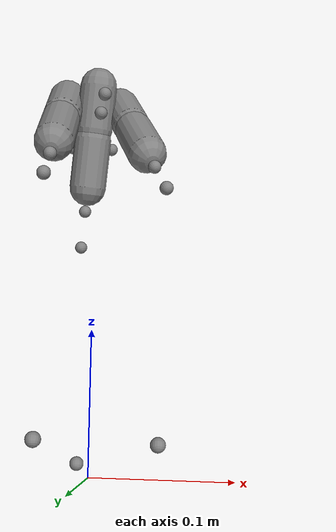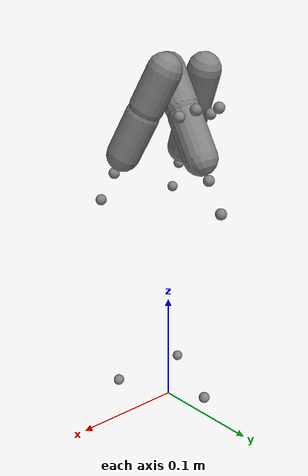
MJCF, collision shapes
<mujoco model="shadow_dexee">
  <compiler angle="radian" meshdir="./mjcf/assets/shadow_dexee"/>

  <option apirate="200" iterations="20" />
  <size njmax="500" nconmax="100" nstack="600000" nuser_jnt="1" nuser_site="1" nuser_tendon="1" nuser_actuator="16" nuser_sensor="1" />
  <visual>
    <map force="0.1" fogend="5" />
  </visual>
  <default>
    <!--main-->
    <default class="robot0:D_Vizual">
      <geom contype="0" conaffinity="0" group="1" material="robot0:MatViz" />
    </default>

    <!--joints-->
    <default class="robot0:asset_class">
      <joint limited="true" margin="0.01" armature="0.001" damping="0.1" frictionloss="0.001" />
      <geom friction="1 0.005 0.001" margin="0.0005" />
      <site rgba="0.4 0.9 0.4 1" />
      <general ctrllimited="true" forcelimited="true" />
    </default>

    <!--sites-->
    <default class="finger_collision_hard">
      <geom condim="4" friction="1 0.001 2e-05" solref="-7000 -167"/>
    </default>
    <default class="finger_collision_soft">
      <geom condim="6" friction="1 0.005 0.0001" solref="-2500 -100"/>
    </default>
  </default>

  <asset>
    <material name="robot0:MatViz" specular="0.75" shininess="0.1" reflectance="0.5" rgba="0.93 0.93 0.93 1" />

    <mesh name="r3_config1_base" file="r3_config1_base.stl" scale= "1 1 1"/>
    <mesh name="r3_config1_base_col" file="r3_config1_base_col.stl" scale="1 1 1"/>
    <mesh name="r3_config1_base_puck" file="r3_config1_base_puck.stl" scale="1 1 1"/>
    <mesh name="r3_config1_base_puck_col" file="r3_config1_base_puck_col.stl" scale="1 1 1"/>
    <mesh name="r3_finger_base" file="r3_finger_base.stl" scale="1 1 1"/>
    <mesh name="r3_finger_base_tb" file="r3_finger_base_tb.stl" scale="1 1 1"/>
    <mesh name="r3_finger_cover" file="r3_finger_cover.stl" scale="1 1 1"/>
    <mesh name="r3_finger_pulley_block" file="r3_finger_pulley_block.stl" scale="1 1 1"/>
    <mesh name="r3_finger_lid_white" file="r3_finger_lid_white.stl" scale="1 1 1"/>
    <mesh name="r3_finger_lid_logo" file="r3_finger_lid_logo.stl" scale="1 1 1"/>
    <mesh name="r3_finger_cover_small_left" file="r3_finger_cover_small_left.stl" scale="1 1 1"/>
    <mesh name="r3_finger_cover_small_right" file="r3_finger_cover_small_right.stl" scale="1 1 1"/>
    <mesh name="r3_finger_base_col" file="r3_finger_base_col.stl" scale="1 1 1"/>
    <mesh name="r3_finger_knuckle" file="r3_finger_knuckle.stl" refquat="1 -1 0 0" scale="1 1 1"/>
    <mesh name="r3_finger_knuckle_col" file="r3_finger_knuckle_col.stl" refquat="1 -1 0 0" scale="1 1 1"/>
    <mesh name="r3_finger_proximal" file="r3_finger_proximal.stl" refquat="1 -1 0 0" scale="1 1 1"/>
    <mesh name="r3_finger_proximal_lid" file="r3_finger_proximal_lid.stl" refquat="1 -1 0 0" scale="1 1 1"/>
    <mesh name="r3_finger_proximal_magtac" file="r3_finger_proximal_magtac.stl" refquat="1 -1 0 0" scale="1 1 1"/>
    <mesh name="r3_finger_proximal_col" file="r3_finger_proximal_col.stl" refquat="1 -1 0 0" scale="1 1 1"/>
    <mesh name="r3_finger_middle" file="r3_finger_middle.stl" refquat="1 -1 0 0" scale="1 1 1"/>
    <mesh name="r3_finger_middle_magtac" file="r3_finger_middle_magtac.stl" refquat="1 -1 0 0" scale="1 1 1"/>
    <mesh name="r3_finger_middle_col" file="r3_finger_middle_col.stl" refquat="1 -1 0 0" scale="1 1 1"/>
    <mesh name="r3_finger_distal" file="r3_finger_distal.stl" refquat="0 0 0 1" scale="1 1 1"/>
    <mesh name="r3_finger_distal_sensor" file="r3_finger_distal_sensor.stl" refquat="0 -1 0 0" scale="1 1 1"/>
    <mesh name="r3_finger_distal_col" file="r3_finger_distal_col.stl" refquat="0 0 0 1" scale="1 1 1"/>
    <mesh name="r3_finger_distal_tip_col" file="r3_finger_distal_tip_col.stl" refquat="0 -1 0 0" scale="1 1 1"/>
  </asset>

  <worldbody>
    <body name="hand_base">
      <geom name="hand_base_geom" class="robot0:D_Vizual" type="mesh" mesh="r3_config1_base" mass="0.51"/>
      <geom name="hand_base_geom_col" class="robot0:D_Vizual" type="mesh" mass="0" mesh="r3_config1_base_col"/>
      <geom name="hand_base_puck_geom" class="robot0:D_Vizual" type="mesh" mass="0" mesh="r3_config1_base_puck"/>
      <geom name="hand_base_puck_geom_col" class="robot0:D_Vizual" type="mesh" mass="0" mesh="r3_config1_base_puck_col"/>
      <body name="F0_finger_base" pos="0 0.05 0.017" quat="1 0 0 0">
        <site name="F0_attachment_site"/>
        <geom name="F0_base_geom" class="robot0:D_Vizual" type="mesh" mass="0.89937782" mesh="r3_finger_base"/>
        <geom name="F0_base_tb_geom" class="robot0:D_Vizual" type="mesh" mass="0" mesh="r3_finger_base_tb"/>
        <geom name="F0_base_cover_geom" class="robot0:D_Vizual" type="mesh" mass="0" mesh="r3_finger_cover"/>
        <geom name="F0_base_pulley_block_geom" class="robot0:D_Vizual" type="mesh" mass="0" mesh="r3_finger_pulley_block"/>
        <geom name="F0_base_lid_white_geom" class="robot0:D_Vizual" type="mesh" mass="0" mesh="r3_finger_lid_white"/>
        <geom name="F0_base_lid_logo_geom" class="robot0:D_Vizual" type="mesh" mass="0" mesh="r3_finger_lid_logo"/>
        <geom name="F0_base_cover_small_left_geom" class="robot0:D_Vizual" type="mesh" mass="0" mesh="r3_finger_cover_small_left"/>
        <geom name="F0_base_cover_small_right_geom" class="robot0:D_Vizual" type="mesh" mass="0" mesh="r3_finger_cover_small_right"/>
        <body name="F0_finger_knuckle" pos="0 0.015 0.17902" quat="0.9659261431868233 0.2588178624211019 0 0">
          <site name="F0_j0_site"/>
          <joint name="F0_J0" axis="0 -1 0" range="-0.8727 0.8727" armature="8e-05" damping="0.009" frictionloss="0.009"/>
          <geom name="F0_knuckle_geom" class="robot0:D_Vizual" type="mesh" mass="0.13077995" mesh="r3_finger_knuckle"/>
          <body name="F0_finger_proximal" pos="0 0 0.03">
            <geom name="primitive_f_0_0" type="capsule" size="0.015 0.02" pos="0 0 0.04"/>
            <site name="F0_j1_site"/>
            <joint name="F0_J1" axis="1 0 0" range="-1.3963 0.7854" armature="8e-05" damping="0.009"
              frictionloss="0.009"/>
            <body name="F0_finger_middle" pos="0 0 0.05" >
              <geom name="primitive_f_0_1" type="capsule" size="0.015 0.0175" pos="0 0 0.035"/>
              <site name="F0_j2_site"/>
              <joint name="F0_J2" axis="1 0 0" range="0 1.3963" armature="8e-05" damping="0.009" frictionloss="0.009"/>
              <body name="F0_finger_distal" pos="0 0 0.035" quat="0 0 -1 1" >
                <geom name="primitive_f_0_2" type="capsule" size="0.012 0.015" pos="0 0 0" quat="0 0 1 1"/>
                <site name="F0_j3_site"/>
                <joint name="F0_J3" axis="-1 0 0" range="-0.5236 1.4835" armature="8e-05" damping="0.009"
                  frictionloss="0.009"/>
                <site name="F0_fingertip_site" pos="0 -0.00625 0.04"/>
                <site name="F0_distal_site" pos="0 0.007 0.03"/>
              </body>
            </body>
          </body>
        </body>
      </body>

      <body name="F1_finger_base" pos="0.039 -0.029 0.017" quat="-0.16212752892551119 0 0 0.98676981326168844">
        <site name="F1_attachment_site"/>
        <geom name="F1_base_geom" class="robot0:D_Vizual" type="mesh" mass="0.89937782" mesh="r3_finger_base"/>
        <geom name="F1_base_tb_geom" class="robot0:D_Vizual" type="mesh" mass="0" mesh="r3_finger_base_tb"/>
        <geom name="F1_base_cover_geom" class="robot0:D_Vizual" type="mesh" mass="0" mesh="r3_finger_cover"/>
        <geom name="F1_base_pulley_block_geom" class="robot0:D_Vizual" type="mesh" mass="0" mesh="r3_finger_pulley_block"/>
        <geom name="F1_base_lid_white_geom" class="robot0:D_Vizual" type="mesh" mass="0"
          mesh="r3_finger_lid_white"/>
        <geom name="F1_base_lid_logo_geom" class="robot0:D_Vizual" type="mesh" mass="0" mesh="r3_finger_lid_logo"/>
        <geom name="F1_base_cover_small_left_geom" class="robot0:D_Vizual" type="mesh" mass="0"
          mesh="r3_finger_cover_small_left"/>
        <geom name="F1_base_cover_small_right_geom" class="robot0:D_Vizual" type="mesh" mass="0"
          mesh="r3_finger_cover_small_right"/>
        <body name="F1_finger_knuckle" pos="0 0.015 0.17902" quat="0.9659261431868233 0.2588178624211019 0 0">
          <site name="F1_j0_site"/>
          <joint name="F1_J0" axis="0 -1 0" range="-0.8727 0.8727" armature="8e-05" damping="0.009" frictionloss="0.009"/>
          <geom name="F1_knuckle_geom" class="robot0:D_Vizual" type="mesh" mass="0.13077995"
            mesh="r3_finger_knuckle"/>
          <body name="F1_finger_proximal" pos="0 0 0.03" >
            <geom name="primitive_f_1_0" type="capsule" size="0.015 0.02" pos="0 0 0.04"/>
            <site name="F1_j1_site"/>
            <joint name="F1_J1" axis="1 0 0" range="-1.3963 0.7854" armature="8e-05" damping="0.009"
              frictionloss="0.009"/>
            <body name="F1_finger_middle" pos="0 0 0.05" >
              <geom name="primitive_f_1_1" type="capsule" size="0.015 0.0175" pos="0 0 0.035"/>
              <site name="F1_j2_site"/>
              <joint name="F1_J2" axis="1 0 0" range="0 1.3963" armature="8e-05" damping="0.009" frictionloss="0.009"/>
              <body name="F1_finger_distal" pos="0 0 0.035" quat="0 0 -1 1" >
                <geom name="primitive_f_1_2" type="capsule" size="0.012 0.015" pos="0 0 0" quat="0 0 1 1"/>
                <site name="F1_j3_site"/>
                <joint name="F1_J3" axis="-1 0 0" range="-0.5236 1.4835" armature="8e-05" damping="0.009"
                  frictionloss="0.009"/>
                <site name="F1_fingertip_site" pos="0 -0.00625 0.04"/>
                <site name="F1_distal_site" pos="0 0.007 0.03"/>
              </body>
            </body>
          </body>
        </body>
      </body>

      <body name="F2_finger_base" pos="-0.039 -0.029 0.017" quat="0.16212752892551119 0 0 0.98676981326168844" >
        <site name="F2_attachment_site"/>
        <geom name="F2_base_geom" class="robot0:D_Vizual" type="mesh" mass="0.89937782" mesh="r3_finger_base"/>
        <geom name="F2_base_tb_geom" class="robot0:D_Vizual" type="mesh" mass="0" mesh="r3_finger_base_tb"/>
        <geom name="F2_base_cover_geom" class="robot0:D_Vizual" type="mesh" mass="0" mesh="r3_finger_cover"/>
        <geom name="F2_base_pulley_block_geom" class="robot0:D_Vizual" type="mesh" mass="0" mesh="r3_finger_pulley_block"/>
        <geom name="F2_base_lid_white_geom" class="robot0:D_Vizual" type="mesh" mass="0"
          mesh="r3_finger_lid_white"/>
        <geom name="F2_base_lid_logo_geom" class="robot0:D_Vizual" type="mesh" mass="0" mesh="r3_finger_lid_logo"/>
        <geom name="F2_base_cover_small_left_geom" class="robot0:D_Vizual" type="mesh" mass="0"
          mesh="r3_finger_cover_small_left"/>
        <geom name="F2_base_cover_small_right_geom" class="robot0:D_Vizual" type="mesh" mass="0"
          mesh="r3_finger_cover_small_right"/>
        <body name="F2_finger_knuckle" pos="0 0.015 0.17902" quat="0.9659261431868233 0.2588178624211019 0 0" >
          <site name="F2_j0_site"/>
          <joint name="F2_J0" axis="0 -1 0" range="-0.8727 0.8727" armature="8e-05" damping="0.009" frictionloss="0.009"/>
          <geom name="F2_knuckle_geom" class="robot0:D_Vizual" type="mesh" mass="0.13077995"
            mesh="r3_finger_knuckle"/>
          <body name="F2_finger_proximal" pos="0 0 0.03">
            <geom name="primitive_f_2_0" type="capsule" size="0.015 0.02" pos="0 0 0.04"/>
            <site name="F2_j1_site"/>
            <joint name="F2_J1" axis="1 0 0" range="-1.3963 0.7854" armature="8e-05" damping="0.009"
              frictionloss="0.009"/>
            <body name="F2_finger_middle" pos="0 0 0.05" >
              <geom name="primitive_f_2_1" type="capsule" size="0.015 0.0175" pos="0 0 0.035"/>
              <site name="F2_j2_site"/>
              <joint name="F2_J2" axis="1 0 0" range="0 1.3963" armature="8e-05" damping="0.009" frictionloss="0.009"/>
              <body name="F2_finger_distal" pos="0 0 0.035" quat="0 0 -1 1" >
                <geom name="primitive_f_2_2" type="capsule" size="0.012 0.015" pos="0 0 0" quat="0 0 1 1"/>
                <site name="F2_j3_site"/>
                <joint name="F2_J3" axis="-1 0 0" range="-0.5236 1.4835" armature="8e-05" damping="0.009"
                  frictionloss="0.009"/>
                <site name="F2_fingertip_site" pos="0 -0.00625 0.04"/>
                <site name="F2_distal_site" pos="0 0.007 0.03"/>
              </body>
            </body>
          </body>
        </body>
      </body>
    </body>
  </worldbody>

  <actuator>
    <general name="F0_J0_actuator"  ctrlrange="-0.8727 0.8727"
      forcerange="-0.9 0.53" dyntype="none" joint="F0_J0" />
    <general name="F0_J1_actuator"  ctrlrange="-1.3963 0.7854"
      forcerange="-0.35 1.2" dyntype="none" joint="F0_J1" />
    <general name="F0_J2_actuator"  ctrlrange="0 1.3963" forcerange="-0.52 0.7"
      dyntype="none" joint="F0_J2" />
    <general name="F0_J3_actuator"  ctrlrange="-0.5236 1.4835"
      forcerange="-0.3 0.3" dyntype="none" joint="F0_J3" />
    <general name="F1_J0_actuator"  ctrlrange="-0.8727 0.8727"
      forcerange="-0.9 0.53" dyntype="none" joint="F1_J0" />
    <general name="F1_J1_actuator"  ctrlrange="-1.3963 0.7854"
      forcerange="-0.35 1.2" dyntype="none" joint="F1_J1" />
    <general name="F1_J2_actuator"  ctrlrange="0 1.3963" forcerange="-0.52 0.7"
      dyntype="none" joint="F1_J2" />
    <general name="F1_J3_actuator"  ctrlrange="-0.5236 1.4835"
      forcerange="-0.3 0.3" dyntype="none" joint="F1_J3" />
    <general name="F2_J0_actuator"  ctrlrange="-0.8727 0.8727"
      forcerange="-0.9 0.53" dyntype="none" joint="F2_J0" />
    <general name="F2_J1_actuator"  ctrlrange="-1.3963 0.7854"
      forcerange="-0.35 1.2" dyntype="none" joint="F2_J1" />
    <general name="F2_J2_actuator"  ctrlrange="0 1.3963" forcerange="-0.52 0.7"
      dyntype="none" joint="F2_J2" />
    <general name="F2_J3_actuator"  ctrlrange="-0.5236 1.4835"
      forcerange="-0.3 0.3" dyntype="none" joint="F2_J3" />
  </actuator>

  <sensor>
    <jointpos name="F0_j0_torque" joint="F0_J0"/>
    <jointpos name="F0_j1_torque" joint="F0_J1"/>
    <jointpos name="F0_j2_torque" joint="F0_J2"/>
    <jointpos name="F0_j3_torque" joint="F0_J3"/>
    <jointpos name="F1_j0_torque" joint="F1_J0"/>
    <jointpos name="F1_j1_torque" joint="F1_J1"/>
    <jointpos name="F1_j2_torque" joint="F1_J2"/>
    <jointpos name="F1_j3_torque" joint="F1_J3"/>
    <jointpos name="F2_j0_torque" joint="F2_J0"/>
    <jointpos name="F2_j1_torque" joint="F2_J1"/>
    <jointpos name="F2_j2_torque" joint="F2_J2"/>
    <jointpos name="F2_j3_torque" joint="F2_J3"/>
  </sensor>
</mujoco>
